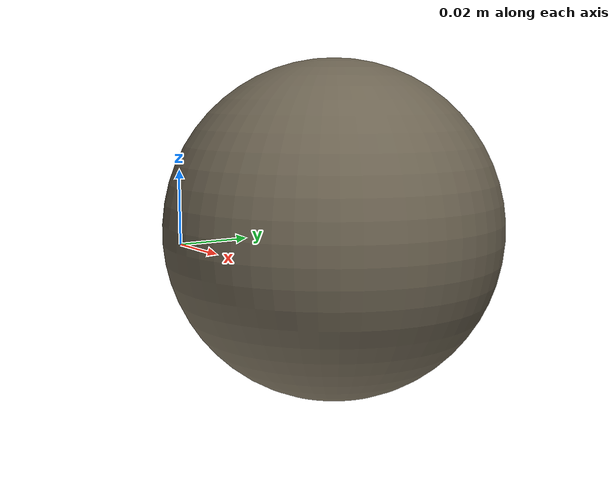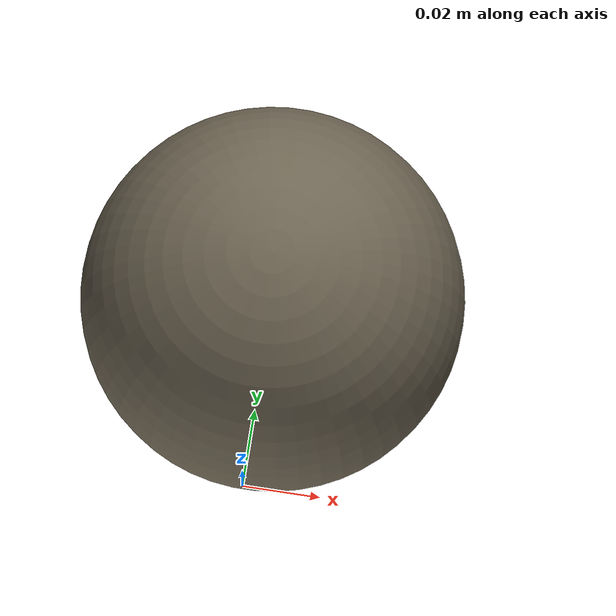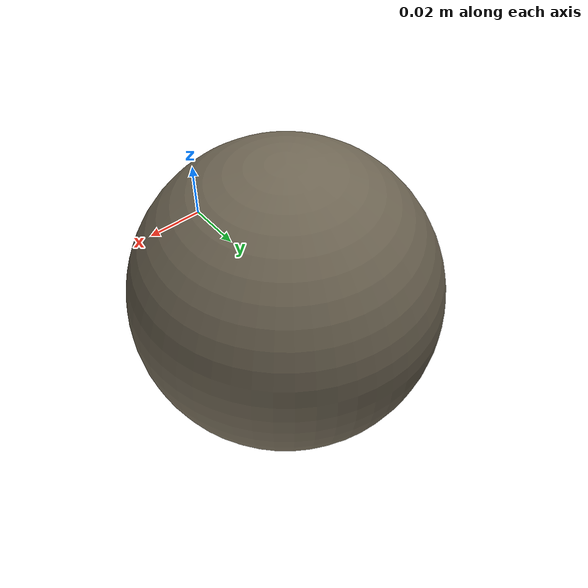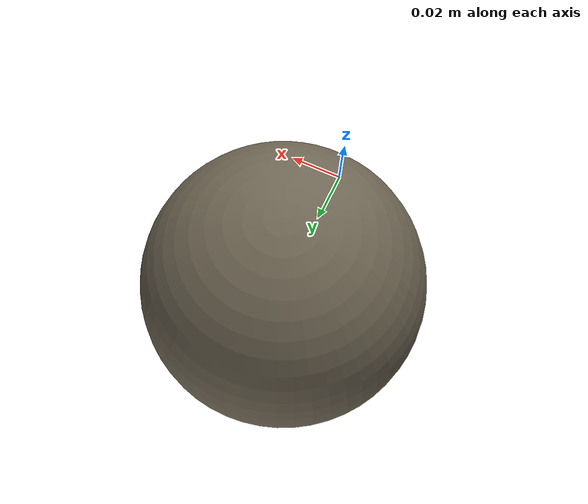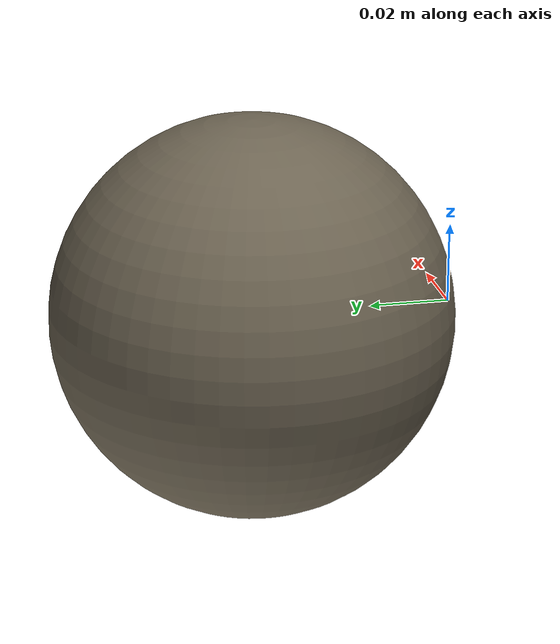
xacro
<?xml version="1.0"?>
<robot name="sphere10" xmlns:xacro="http://www.ros.org/wiki/xacro">

  <link name="sphere10_link">
    <visual>
      <geometry>
        <mesh filename="package://qm_description/meshes/sar/Sphere10.stl" scale="0.001 0.001 0.001"/>
      </geometry>
      <material name="gray">
          <color rgba="0.435 0.4 0.329 1"/>
      </material>
    </visual>
    <collision>
      <geometry>
        <mesh filename="package://qm_description/meshes/sar/Sphere10.stl" scale="0.001 0.001 0.001"/>
      </geometry>
    </collision>
    <inertial>
      <mass value="3.77"/>
      <inertia ixx="0.01508" ixy="0.0" ixz="0.0" iyy="0.01508" iyz="0.0" izz="0.01508"/>
    </inertial>
  </link>

  <gazebo reference="sphere10_link">
    <material>Gazebo/Grey</material>
  </gazebo>

</robot>
